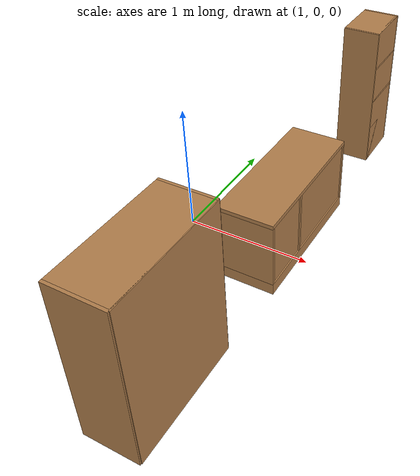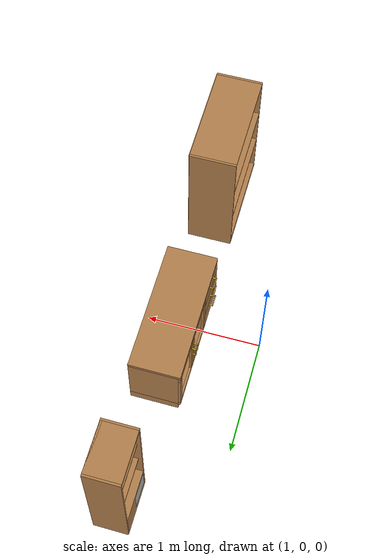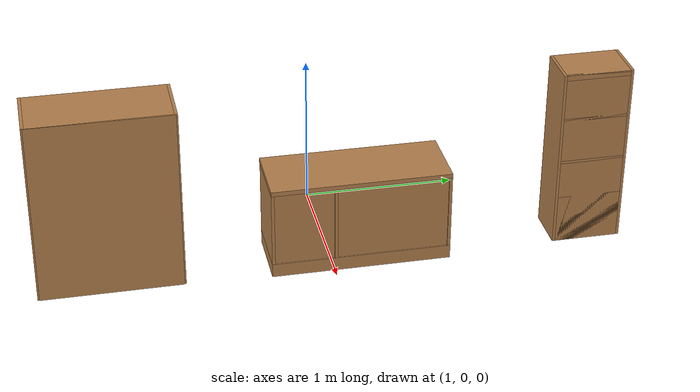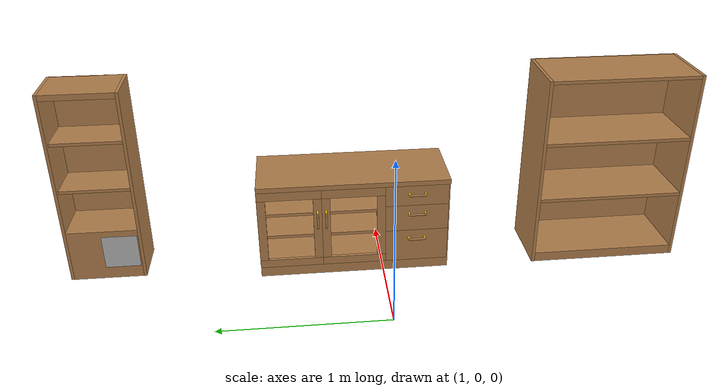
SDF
<sdf version="1.6">
 <world name="default">
  <model name="bookshelf">
   <static>1</static>
   <link name="link">
    <inertial><mass>1</mass></inertial>
    <collision name="back">
     <pose>0 0.005 0.6 0 -0 0</pose>
     <geometry><box><size>0.9 0.01 1.2</size></box></geometry>
    </collision>
    <visual name="visual1">
     <pose>0 0.005 0.6 0 -0 0</pose>
     <geometry><box><size>0.9 0.01 1.2</size></box></geometry>
     <material>
      <script><uri>file://media/materials/scripts/gazebo.material</uri><name>Gazebo/Wood</name></script>
     </material>
    </visual>
    <collision name="left_side">
     <pose>0.45 -0.195 0.6 0 -0 0</pose>
     <geometry><box><size>0.02 0.4 1.2</size></box></geometry>
    </collision>
    <visual name="visual2">
     <pose>0.45 -0.195 0.6 0 -0 0</pose>
     <geometry><box><size>0.02 0.4 1.2</size></box></geometry>
     <material>
      <script><uri>file://media/materials/scripts/gazebo.material</uri><name>Gazebo/Wood</name></script>
     </material>
    </visual>
    <collision name="right_side">
     <pose>-0.45 -0.195 0.6 0 -0 0</pose>
     <geometry><box><size>0.02 0.4 1.2</size></box></geometry>
    </collision>
    <visual name="visual3">
     <pose>-0.45 -0.195 0.6 0 -0 0</pose>
     <geometry><box><size>0.02 0.4 1.2</size></box></geometry>
     <material>
      <script><uri>file://media/materials/scripts/gazebo.material</uri><name>Gazebo/Wood</name></script>
     </material>
    </visual>
    <collision name="bottom">
     <pose>0 -0.195 0.03 0 -0 0</pose>
     <geometry><box><size>0.88 0.4 0.06</size></box></geometry>
    </collision>
    <visual name="visual4">
     <pose>0 -0.195 0.03 0 -0 0</pose>
     <geometry><box><size>0.88 0.4 0.06</size></box></geometry>
     <material>
      <script><uri>file://media/materials/scripts/gazebo.material</uri><name>Gazebo/Wood</name></script>
     </material>
    </visual>
    <collision name="top">
     <pose>0 -0.195 1.19 0 -0 0</pose>
     <geometry><box><size>0.88 0.4 0.02</size></box></geometry>
    </collision>
    <visual name="visual5">
     <pose>0 -0.195 1.19 0 -0 0</pose>
     <geometry><box><size>0.88 0.4 0.02</size></box></geometry>
     <material>
      <script><uri>file://media/materials/scripts/gazebo.material</uri><name>Gazebo/Wood</name></script>
     </material>
    </visual>
    <collision name="low_shelf">
     <pose>0 -0.195 0.43 0 -0 0</pose>
     <geometry><box><size>0.88 0.4 0.02</size></box></geometry>
    </collision>
    <visual name="visual6">
     <pose>0 -0.195 0.43 0 -0 0</pose>
     <geometry><box><size>0.88 0.4 0.02</size></box></geometry>
     <material>
      <script><uri>file://media/materials/scripts/gazebo.material</uri><name>Gazebo/Wood</name></script>
     </material>
    </visual>
    <collision name="high_shelf">
     <pose>0 -0.195 0.8 0 -0 0</pose>
     <geometry><box><size>0.88 0.4 0.02</size></box></geometry>
    </collision>
    <visual name="visual7">
     <pose>0 -0.195 0.8 0 -0 0</pose>
     <geometry><box><size>0.88 0.4 0.02</size></box></geometry>
     <material>
      <script><uri>file://media/materials/scripts/gazebo.material</uri><name>Gazebo/Wood</name></script>
     </material>
    </visual>
   </link>
   <pose>1.9 -1.4 0 0 0 -1.57</pose>
  </model>
  <model name="hcr_shelf_1">
   <link name="link">
    <inertial>
     <mass>5</mass>
     <inertia><ixx>1</ixx><ixy>0</ixy><ixz>0</ixz><iyy>1</iyy><iyz>0</iyz><izz>1</izz></inertia>
    </inertial>
    <visual name="left_board">
     <pose>-0.1475 0.009 -0.598 0 -0 0</pose>
     <geometry><box><size>0.295 0.018 1.196</size></box></geometry>
     <material>
      <script><uri>model://base_materials/wood/scripts/wood.material</uri><name>base_materials/wood</name></script>
     </material>
    </visual>
    <collision name="collision_left_board">
     <pose>-0.1475 0.009 -0.598 0 -0 0</pose>
     <geometry><box><size>0.295 0.018 1.196</size></box></geometry>
    </collision>
    <visual name="right_board">
     <pose>-0.1475 0.441 -0.598 0 -0 0</pose>
     <geometry><box><size>0.295 0.018 1.196</size></box></geometry>
     <material>
      <script><uri>model://base_materials/wood/scripts/wood.material</uri><name>base_materials/wood</name></script>
     </material>
    </visual>
    <collision name="collision_right_board">
     <pose>-0.1475 0.441 -0.598 0 -0 0</pose>
     <geometry><box><size>0.295 0.018 1.196</size></box></geometry>
    </collision>
    <visual name="top_board">
     <pose>-0.1475 0.225 -0.0175 0 -0 0</pose>
     <geometry><box><size>0.295 0.414 0.035</size></box></geometry>
     <material>
      <script><uri>model://base_materials/wood/scripts/wood.material</uri><name>base_materials/wood</name></script>
     </material>
    </visual>
    <collision name="collision_top_board">
     <pose>-0.1475 0.225 -0.0175 0 -0 0</pose>
     <geometry><box><size>0.295 0.414 0.035</size></box></geometry>
    </collision>
    <visual name="1st_shelf">
     <pose>-0.162 0.225 -0.311 0 -0 0</pose>
     <geometry><box><size>0.266 0.414 0.018</size></box></geometry>
     <material>
      <script><uri>model://base_materials/wood/scripts/wood.material</uri><name>base_materials/wood</name></script>
     </material>
    </visual>
    <collision name="collision_1st_shelf">
     <pose>-0.162 0.225 -0.311 0 -0 0</pose>
     <geometry><box><size>0.266 0.414 0.018</size></box></geometry>
    </collision>
    <visual name="2nd_shelf">
     <pose>-0.162 0.225 -0.613 0 -0 0</pose>
     <geometry><box><size>0.266 0.414 0.018</size></box></geometry>
     <material>
      <script><uri>model://base_materials/wood/scripts/wood.material</uri><name>base_materials/wood</name></script>
     </material>
    </visual>
    <collision name="collision_2nd_shelf">
     <pose>-0.162 0.225 -0.613 0 -0 0</pose>
     <geometry><box><size>0.266 0.414 0.018</size></box></geometry>
    </collision>
    <visual name="bottom_board">
     <pose>-0.1475 0.225 -1.0335 0 -0 0</pose>
     <geometry><box><size>0.295 0.414 0.325</size></box></geometry>
     <material>
      <script><uri>model://base_materials/wood/scripts/wood.material</uri><name>base_materials/wood</name></script>
     </material>
    </visual>
    <collision name="collision_bottom_board">
     <pose>-0.1475 0.225 -1.0335 0 -0 0</pose>
     <geometry><box><size>0.295 0.414 0.325</size></box></geometry>
    </collision>
    <visual name="back_board">
     <pose>-0.286 0.225 -0.598 0 -0 0</pose>
     <geometry><box><size>0.018 0.414 1.196</size></box></geometry>
     <material>
      <script><uri>model://base_materials/wood/scripts/wood.material</uri><name>base_materials/wood</name></script>
     </material>
    </visual>
    <collision name="collision_back_board">
     <pose>-0.286 0.225 -0.598 0 -0 0</pose>
     <geometry><box><size>0.018 0.414 1.196</size></box></geometry>
    </collision>
    <visual name="marker_0031">
     <pose>0 0.32 -1.015 0 -0 0</pose>
     <geometry><box><size>0.0001 0.21 0.21</size></box></geometry>
     <material>
      <script>
       <uri>model://hcr_shelf_1/marker/0031/scripts</uri>
       <uri>model://hcr_shelf_1/marker/0031/textures</uri>
       <name>Marker/0031</name>
      </script>
     </material>
    </visual>
    <collision name="collision_marker_0031">
     <pose>0 0.32 -1.015 0 -0 0</pose>
     <geometry><box><size>0.0001 0.21 0.21</size></box></geometry>
    </collision>
    <velocity_decay><linear>0</linear><angular>0</angular></velocity_decay>
   </link>
   <static>1</static>
   <pose>1.6 1.9 1.2 0 -0 3.14</pose>
  </model>
  <model name="living_sideboard">
   <link name="link">
    <inertial>
     <mass>10</mass>
     <inertia><ixx>1</ixx><ixy>0</ixy><ixz>0</ixz><iyy>1</iyy><iyz>0</iyz><izz>1</izz></inertia>
    </inertial>
    <visual name="left_board">
     <pose>-0.23 0.01 0.3375 0 -0 0</pose>
     <geometry><box><size>0.42 0.02 0.495</size></box></geometry>
     <material>
      <script><uri>model://base_materials/wood/scripts/wood.material</uri><name>base_materials/wood</name></script>
     </material>
    </visual>
    <collision name="collision_left_board">
     <pose>-0.23 0.01 0.3375 0 -0 0</pose>
     <geometry><box><size>0.42 0.02 0.495</size></box></geometry>
    </collision>
    <visual name="back_board">
     <pose>-0.42 0.575 0.2925 0 -0 0</pose>
     <geometry><box><size>0.02 1.11 0.585</size></box></geometry>
     <material>
      <script><uri>model://base_materials/wood/scripts/wood.material</uri><name>base_materials/wood</name></script>
     </material>
    </visual>
    <collision name="collision_back_board">
     <pose>-0.42 0.575 0.2925 0 -0 0</pose>
     <geometry><box><size>0.02 1.11 0.585</size></box></geometry>
    </collision>
    <visual name="right_board">
     <pose>-0.23 1.14 0.3375 0 -0 0</pose>
     <geometry><box><size>0.42 0.02 0.495</size></box></geometry>
     <material>
      <script><uri>model://base_materials/wood/scripts/wood.material</uri><name>base_materials/wood</name></script>
     </material>
    </visual>
    <collision name="collision_right_board">
     <pose>-0.23 1.14 0.3375 0 -0 0</pose>
     <geometry><box><size>0.42 0.02 0.495</size></box></geometry>
    </collision>
    <visual name="center_vertical_board1">
     <pose>-0.23 0.74 0.3375 0 -0 0</pose>
     <geometry><box><size>0.42 0.02 0.495</size></box></geometry>
     <material>
      <script><uri>model://base_materials/wood/scripts/wood.material</uri><name>base_materials/wood</name></script>
     </material>
    </visual>
    <collision name="collision_center_vertical_board1">
     <pose>-0.23 0.74 0.3375 0 -0 0</pose>
     <geometry><box><size>0.42 0.02 0.495</size></box></geometry>
    </collision>
    <visual name="top_board">
     <pose>-0.22 0.575 0.6 0 -0 0</pose>
     <geometry><box><size>0.44 1.15 0.03</size></box></geometry>
     <material>
      <script><uri>model://base_materials/wood/scripts/wood.material</uri><name>base_materials/wood</name></script>
     </material>
    </visual>
    <collision name="collision_top_board">
     <pose>-0.22 0.575 0.6 0 -0 0</pose>
     <geometry><box><size>0.44 1.15 0.03</size></box></geometry>
    </collision>
    <visual name="bottom_board">
     <pose>-0.23 0.575 0.045 0 -0 0</pose>
     <geometry><box><size>0.42 1.15 0.09</size></box></geometry>
     <material>
      <script><uri>model://base_materials/wood/scripts/wood.material</uri><name>base_materials/wood</name></script>
     </material>
    </visual>
    <collision name="collision_bottom_board">
     <pose>-0.23 0.575 0.045 0 -0 0</pose>
     <geometry><box><size>0.42 1.15 0.09</size></box></geometry>
    </collision>
    <visual name="1st_shelf">
     <pose>-0.225 0.37 0.259 0 -0 0</pose>
     <geometry><box><size>0.36 0.72 0.018</size></box></geometry>
     <material>
      <script><uri>model://base_materials/wood/scripts/wood.material</uri><name>base_materials/wood</name></script>
     </material>
    </visual>
    <collision name="collision_1st_shelf">
     <pose>-0.225 0.37 0.259 0 -0 0</pose>
     <geometry><box><size>0.36 0.72 0.018</size></box></geometry>
    </collision>
    <visual name="2nd_shelf">
     <pose>-0.225 0.37 0.407 0 -0 0</pose>
     <geometry><box><size>0.36 0.72 0.018</size></box></geometry>
     <material>
      <script><uri>model://base_materials/wood/scripts/wood.material</uri><name>base_materials/wood</name></script>
     </material>
    </visual>
    <collision name="collision_2nd_shelf">
     <pose>-0.225 0.37 0.407 0 -0 0</pose>
     <geometry><box><size>0.36 0.72 0.018</size></box></geometry>
    </collision>
    <visual name="1st_drawer">
     <pose>-0.2025 0.95 0.52 0 -0 0</pose>
     <geometry><box><size>0.405 0.38 0.13</size></box></geometry>
     <material>
      <script><uri>model://base_materials/wood/scripts/wood.material</uri><name>base_materials/wood</name></script>
     </material>
    </visual>
    <collision name="collision_1st_drawer">
     <pose>-0.2025 0.95 0.52 0 -0 0</pose>
     <geometry><box><size>0.405 0.38 0.13</size></box></geometry>
    </collision>
    <visual name="1st_drawer_handle_l1">
     <pose>0.015 0.9015 0.535 3.14159 1.57079 3.14159</pose>
     <geometry><cylinder><radius>0.006</radius><length>0.03</length></cylinder></geometry>
     <material>
      <ambient>1 0.84314 0 1</ambient>
      <diffuse>1 0.84314 0 1</diffuse>
      <specular>0.1 0.1 0.1 1</specular>
     </material>
    </visual>
    <collision name="collision_1st_drawer_handle_l1">
     <pose>0.015 0.9015 0.535 3.14159 1.57079 3.14159</pose>
     <geometry><cylinder><radius>0.006</radius><length>0.03</length></cylinder></geometry>
    </collision>
    <visual name="1st_drawer_handle_l2">
     <pose>0.03 0.9015 0.535 0 -0 0</pose>
     <geometry><sphere><radius>0.006</radius></sphere></geometry>
     <material>
      <ambient>1 0.84314 0 1</ambient>
      <diffuse>1 0.84314 0 1</diffuse>
      <specular>0.1 0.1 0.1 1</specular>
     </material>
    </visual>
    <collision name="collision_1st_drawer_handle_l2">
     <pose>0.03 0.9015 0.535 0 -0 0</pose>
     <geometry><sphere><radius>0.006</radius></sphere></geometry>
    </collision>
    <visual name="1st_drawer_handle_r1">
     <pose>0.015 0.9985 0.535 3.14159 1.57079 3.14159</pose>
     <geometry><cylinder><radius>0.006</radius><length>0.03</length></cylinder></geometry>
     <material>
      <ambient>1 0.84314 0 1</ambient>
      <diffuse>1 0.84314 0 1</diffuse>
      <specular>0.1 0.1 0.1 1</specular>
     </material>
    </visual>
    <collision name="collision_1st_drawer_handle_r1">
     <pose>0.015 0.9985 0.535 3.14159 1.57079 3.14159</pose>
     <geometry><cylinder><radius>0.006</radius><length>0.03</length></cylinder></geometry>
    </collision>
    <visual name="1st_drawer_handle_r2">
     <pose>0.03 0.9985 0.535 0 -0 0</pose>
     <geometry><sphere><radius>0.006</radius></sphere></geometry>
     <material>
      <ambient>1 0.84314 0 1</ambient>
      <diffuse>1 0.84314 0 1</diffuse>
      <specular>0.1 0.1 0.1 1</specular>
     </material>
    </visual>
    <collision name="collision_1st_drawer_handle_r2">
     <pose>0.03 0.9985 0.535 0 -0 0</pose>
     <geometry><sphere><radius>0.006</radius></sphere></geometry>
    </collision>
    <visual name="1st_drawer_handle_center">
     <pose>0.03 0.95 0.535 1.5708 -0 0</pose>
     <geometry><cylinder><radius>0.006</radius><length>0.097</length></cylinder></geometry>
     <material>
      <script><uri>model://base_materials/wood/scripts/wood.material</uri><name>base_materials/wood</name></script>
     </material>
    </visual>
    <collision name="collision_1st_drawer_handle_center">
     <pose>0.03 0.95 0.535 1.5708 -0 0</pose>
     <geometry><cylinder><radius>0.006</radius><length>0.097</length></cylinder></geometry>
    </collision>
    <visual name="2nd_drawer">
     <pose>-0.2025 0.95 0.37 0 -0 0</pose>
     <geometry><box><size>0.405 0.38 0.17</size></box></geometry>
     <material>
      <script><uri>model://base_materials/wood/scripts/wood.material</uri><name>base_materials/wood</name></script>
     </material>
    </visual>
    <collision name="collision_2nd_drawer">
     <pose>-0.2025 0.95 0.37 0 -0 0</pose>
     <geometry><box><size>0.405 0.38 0.17</size></box></geometry>
    </collision>
    <visual name="2nd_drawer_handle_l1">
     <pose>0.015 0.9015 0.405 3.14159 1.57079 3.14159</pose>
     <geometry><cylinder><radius>0.006</radius><length>0.03</length></cylinder></geometry>
     <material>
      <ambient>1 0.84314 0 1</ambient>
      <diffuse>1 0.84314 0 1</diffuse>
      <specular>0.1 0.1 0.1 1</specular>
     </material>
    </visual>
    <collision name="collision_2nd_drawer_handle_l1">
     <pose>0.015 0.9015 0.405 3.14159 1.57079 3.14159</pose>
     <geometry><cylinder><radius>0.006</radius><length>0.03</length></cylinder></geometry>
    </collision>
    <visual name="2nd_drawer_handle_l2">
     <pose>0.03 0.9015 0.405 0 -0 0</pose>
     <geometry><sphere><radius>0.006</radius></sphere></geometry>
     <material>
      <ambient>1 0.84314 0 1</ambient>
      <diffuse>1 0.84314 0 1</diffuse>
      <specular>0.1 0.1 0.1 1</specular>
     </material>
    </visual>
    <collision name="collision_2nd_drawer_handle_l2">
     <pose>0.03 0.9015 0.405 0 -0 0</pose>
     <geometry><sphere><radius>0.006</radius></sphere></geometry>
    </collision>
    <visual name="2nd_drawer_handle_r1">
     <pose>0.015 0.9985 0.405 3.14159 1.57079 3.14159</pose>
     <geometry><cylinder><radius>0.006</radius><length>0.03</length></cylinder></geometry>
     <material>
      <ambient>1 0.84314 0 1</ambient>
      <diffuse>1 0.84314 0 1</diffuse>
      <specular>0.1 0.1 0.1 1</specular>
     </material>
    </visual>
    <collision name="collision_2nd_drawer_handle_r1">
     <pose>0.015 0.9985 0.405 3.14159 1.57079 3.14159</pose>
     <geometry><cylinder><radius>0.006</radius><length>0.03</length></cylinder></geometry>
    </collision>
    <visual name="2nd_drawer_handle_r2">
     <pose>0.03 0.9985 0.405 0 -0 0</pose>
     <geometry><sphere><radius>0.006</radius></sphere></geometry>
     <material>
      <ambient>1 0.84314 0 1</ambient>
      <diffuse>1 0.84314 0 1</diffuse>
      <specular>0.1 0.1 0.1 1</specular>
     </material>
    </visual>
    <collision name="collision_2nd_drawer_handle_r2">
     <pose>0.03 0.9985 0.405 0 -0 0</pose>
     <geometry><sphere><radius>0.006</radius></sphere></geometry>
    </collision>
    <visual name="2nd_drawer_handle_center">
     <pose>0.03 0.95 0.405 1.5708 -0 0</pose>
     <geometry><cylinder><radius>0.006</radius><length>0.097</length></cylinder></geometry>
     <material>
      <script><uri>model://base_materials/wood/scripts/wood.material</uri><name>base_materials/wood</name></script>
     </material>
    </visual>
    <collision name="collision_2nd_drawer_handle_center">
     <pose>0.03 0.95 0.405 1.5708 -0 0</pose>
     <geometry><cylinder><radius>0.006</radius><length>0.097</length></cylinder></geometry>
    </collision>
    <visual name="3rd_drawer">
     <pose>-0.2025 0.95 0.18 0 -0 0</pose>
     <geometry><box><size>0.405 0.38 0.21</size></box></geometry>
     <material>
      <script><uri>model://base_materials/wood/scripts/wood.material</uri><name>base_materials/wood</name></script>
     </material>
    </visual>
    <collision name="collision_3rd_drawer">
     <pose>-0.2025 0.95 0.18 0 -0 0</pose>
     <geometry><box><size>0.405 0.38 0.21</size></box></geometry>
    </collision>
    <visual name="3rd_drawer_handle_l1">
     <pose>0.015 0.9015 0.235 3.14159 1.57079 3.14159</pose>
     <geometry><cylinder><radius>0.006</radius><length>0.03</length></cylinder></geometry>
     <material>
      <ambient>1 0.84314 0 1</ambient>
      <diffuse>1 0.84314 0 1</diffuse>
      <specular>0.1 0.1 0.1 1</specular>
     </material>
    </visual>
    <collision name="collision_3rd_drawer_handle_l1">
     <pose>0.015 0.9015 0.235 3.14159 1.57079 3.14159</pose>
     <geometry><cylinder><radius>0.006</radius><length>0.03</length></cylinder></geometry>
    </collision>
    <visual name="3rd_drawer_handle_l2">
     <pose>0.03 0.9015 0.235 0 -0 0</pose>
     <geometry><sphere><radius>0.006</radius></sphere></geometry>
     <material>
      <ambient>1 0.84314 0 1</ambient>
      <diffuse>1 0.84314 0 1</diffuse>
      <specular>0.1 0.1 0.1 1</specular>
     </material>
    </visual>
    <collision name="collision_3rd_drawer_handle_l2">
     <pose>0.03 0.9015 0.235 0 -0 0</pose>
     <geometry><sphere><radius>0.006</radius></sphere></geometry>
    </collision>
    <visual name="3rd_drawer_handle_r1">
     <pose>0.015 0.9985 0.235 3.14159 1.57079 3.14159</pose>
     <geometry><cylinder><radius>0.006</radius><length>0.03</length></cylinder></geometry>
     <material>
      <ambient>1 0.84314 0 1</ambient>
      <diffuse>1 0.84314 0 1</diffuse>
      <specular>0.1 0.1 0.1 1</specular>
     </material>
    </visual>
    <collision name="collision_3rd_drawer_handle_r1">
     <pose>0.015 0.9985 0.235 3.14159 1.57079 3.14159</pose>
     <geometry><cylinder><radius>0.006</radius><length>0.03</length></cylinder></geometry>
    </collision>
    <visual name="3rd_drawer_handle_r2">
     <pose>0.03 0.9985 0.235 0 -0 0</pose>
     <geometry><sphere><radius>0.006</radius></sphere></geometry>
     <material>
      <ambient>1 0.84314 0 1</ambient>
      <diffuse>1 0.84314 0 1</diffuse>
      <specular>0.1 0.1 0.1 1</specular>
     </material>
    </visual>
    <collision name="collision_3rd_drawer_handle_r2">
     <pose>0.03 0.9985 0.235 0 -0 0</pose>
     <geometry><sphere><radius>0.006</radius></sphere></geometry>
    </collision>
    <visual name="3rd_drawer_handle_center">
     <pose>0.03 0.95 0.235 1.5708 -0 0</pose>
     <geometry><cylinder><radius>0.006</radius><length>0.097</length></cylinder></geometry>
     <material>
      <script><uri>model://base_materials/wood/scripts/wood.material</uri><name>base_materials/wood</name></script>
     </material>
    </visual>
    <collision name="collision_3rd_drawer_handle_center">
     <pose>0.03 0.95 0.235 1.5708 -0 0</pose>
     <geometry><cylinder><radius>0.006</radius><length>0.097</length></cylinder></geometry>
    </collision>
    <visual name="left_door_left_frame">
     <pose>-0.01 0.025 0.3275 0 -0 0</pose>
     <geometry><box><size>0.02 0.05 0.405</size></box></geometry>
     <material>
      <script><uri>model://base_materials/wood/scripts/wood.material</uri><name>base_materials/wood</name></script>
     </material>
    </visual>
    <collision name="collision_left_door_left_frame">
     <pose>-0.01 0.025 0.3275 0 -0 0</pose>
     <geometry><box><size>0.02 0.05 0.405</size></box></geometry>
    </collision>
    <visual name="left_door_right_frame">
     <pose>-0.01 0.355 0.3275 0 -0 0</pose>
     <geometry><box><size>0.02 0.05 0.405</size></box></geometry>
     <material>
      <script><uri>model://base_materials/wood/scripts/wood.material</uri><name>base_materials/wood</name></script>
     </material>
    </visual>
    <collision name="collision_left_door_right_frame">
     <pose>-0.01 0.355 0.3275 0 -0 0</pose>
     <geometry><box><size>0.02 0.05 0.405</size></box></geometry>
    </collision>
    <visual name="left_door_handle_top1">
     <pose>0.015 0.355 0.4475 3.14159 1.57079 3.14159</pose>
     <geometry><cylinder><radius>0.006</radius><length>0.03</length></cylinder></geometry>
     <material>
      <ambient>1 0.84314 0 1</ambient>
      <diffuse>1 0.84314 0 1</diffuse>
      <specular>0.1 0.1 0.1 1</specular>
     </material>
    </visual>
    <collision name="collision_left_door_handle_top1">
     <pose>0.015 0.355 0.4475 3.14159 1.57079 3.14159</pose>
     <geometry><cylinder><radius>0.006</radius><length>0.03</length></cylinder></geometry>
    </collision>
    <visual name="left_door_handle_top2">
     <pose>0.03 0.355 0.4475 0 -0 0</pose>
     <geometry><sphere><radius>0.006</radius></sphere></geometry>
     <material>
      <ambient>1 0.84314 0 1</ambient>
      <diffuse>1 0.84314 0 1</diffuse>
      <specular>0.1 0.1 0.1 1</specular>
     </material>
    </visual>
    <collision name="collision_left_door_handle_top2">
     <pose>0.03 0.355 0.4475 0 -0 0</pose>
     <geometry><sphere><radius>0.006</radius></sphere></geometry>
    </collision>
    <visual name="left_door_handle_bottom1">
     <pose>0.015 0.355 0.3505 3.14159 1.57079 3.14159</pose>
     <geometry><cylinder><radius>0.006</radius><length>0.03</length></cylinder></geometry>
     <material>
      <ambient>1 0.84314 0 1</ambient>
      <diffuse>1 0.84314 0 1</diffuse>
      <specular>0.1 0.1 0.1 1</specular>
     </material>
    </visual>
    <collision name="collision_left_door_handle_bottom1">
     <pose>0.015 0.355 0.3505 3.14159 1.57079 3.14159</pose>
     <geometry><cylinder><radius>0.006</radius><length>0.03</length></cylinder></geometry>
    </collision>
    <visual name="left_door_handle_bottom2">
     <pose>0.03 0.355 0.3505 0 -0 0</pose>
     <geometry><sphere><radius>0.006</radius></sphere></geometry>
     <material>
      <ambient>1 0.84314 0 1</ambient>
      <diffuse>1 0.84314 0 1</diffuse>
      <specular>0.1 0.1 0.1 1</specular>
     </material>
    </visual>
    <collision name="collision_left_door_handle_bottom2">
     <pose>0.03 0.355 0.3505 0 -0 0</pose>
     <geometry><sphere><radius>0.006</radius></sphere></geometry>
    </collision>
    <visual name="left_door_handle_center">
     <pose>0.03 0.355 0.399 0 -0 0</pose>
     <geometry><cylinder><radius>0.006</radius><length>0.097</length></cylinder></geometry>
     <material>
      <script><uri>model://base_materials/wood/scripts/wood.material</uri><name>base_materials/wood</name></script>
     </material>
    </visual>
    <collision name="collision_left_door_handle_center">
     <pose>0.03 0.355 0.399 0 -0 0</pose>
     <geometry><cylinder><radius>0.006</radius><length>0.097</length></cylinder></geometry>
    </collision>
    <visual name="left_door_top_frame">
     <pose>-0.01 0.19 0.5575 0 -0 0</pose>
     <geometry><box><size>0.02 0.38 0.055</size></box></geometry>
     <material>
      <script><uri>model://base_materials/wood/scripts/wood.material</uri><name>base_materials/wood</name></script>
     </material>
    </visual>
    <collision name="collision_left_door_top_frame">
     <pose>-0.01 0.19 0.5575 0 -0 0</pose>
     <geometry><box><size>0.02 0.38 0.055</size></box></geometry>
    </collision>
    <visual name="left_door_bottom_frame">
     <pose>-0.01 0.19 0.1 0 -0 0</pose>
     <geometry><box><size>0.02 0.38 0.05</size></box></geometry>
     <material>
      <script><uri>model://base_materials/wood/scripts/wood.material</uri><name>base_materials/wood</name></script>
     </material>
    </visual>
    <collision name="collision_left_door_bottom_frame">
     <pose>-0.01 0.19 0.1 0 -0 0</pose>
     <geometry><box><size>0.02 0.38 0.05</size></box></geometry>
    </collision>
    <visual name="right_door_left_frame">
     <pose>-0.01 0.405 0.3275 0 -0 0</pose>
     <geometry><box><size>0.02 0.05 0.405</size></box></geometry>
     <material>
      <script><uri>model://base_materials/wood/scripts/wood.material</uri><name>base_materials/wood</name></script>
     </material>
    </visual>
    <collision name="collision_right_door_left_frame">
     <pose>-0.01 0.405 0.3275 0 -0 0</pose>
     <geometry><box><size>0.02 0.05 0.405</size></box></geometry>
    </collision>
    <visual name="right_door_right_frame">
     <pose>-0.01 0.735 0.3275 0 -0 0</pose>
     <geometry><box><size>0.02 0.05 0.405</size></box></geometry>
     <material>
      <script><uri>model://base_materials/wood/scripts/wood.material</uri><name>base_materials/wood</name></script>
     </material>
    </visual>
    <collision name="collision_right_door_right_frame">
     <pose>-0.01 0.735 0.3275 0 -0 0</pose>
     <geometry><box><size>0.02 0.05 0.405</size></box></geometry>
    </collision>
    <visual name="right_door_top_frame">
     <pose>-0.01 0.57 0.5575 0 -0 0</pose>
     <geometry><box><size>0.02 0.38 0.055</size></box></geometry>
     <material>
      <script><uri>model://base_materials/wood/scripts/wood.material</uri><name>base_materials/wood</name></script>
     </material>
    </visual>
    <collision name="collision_right_door_top_frame">
     <pose>-0.01 0.57 0.5575 0 -0 0</pose>
     <geometry><box><size>0.02 0.38 0.055</size></box></geometry>
    </collision>
    <visual name="right_door_bottom_frame">
     <pose>-0.01 0.57 0.1 0 -0 0</pose>
     <geometry><box><size>0.02 0.38 0.05</size></box></geometry>
     <material>
      <script><uri>model://base_materials/wood/scripts/wood.material</uri><name>base_materials/wood</name></script>
     </material>
    </visual>
    <collision name="collision_right_door_bottom_frame">
     <pose>-0.01 0.57 0.1 0 -0 0</pose>
     <geometry><box><size>0.02 0.38 0.05</size></box></geometry>
    </collision>
    <visual name="right_door_handle_top1">
     <pose>0.015 0.405 0.4475 3.14159 1.57079 3.14159</pose>
     <geometry><cylinder><radius>0.006</radius><length>0.03</length></cylinder></geometry>
     <material>
      <ambient>1 0.84314 0 1</ambient>
      <diffuse>1 0.84314 0 1</diffuse>
      <specular>0.1 0.1 0.1 1</specular>
     </material>
    </visual>
    <collision name="collision_right_door_handle_top1">
     <pose>0.015 0.405 0.4475 3.14159 1.57079 3.14159</pose>
     <geometry><cylinder><radius>0.006</radius><length>0.03</length></cylinder></geometry>
    </collision>
    <visual name="right_door_handle_top2">
     <pose>0.03 0.405 0.4475 0 -0 0</pose>
     <geometry><sphere><radius>0.006</radius></sphere></geometry>
     <material>
      <ambient>1 0.84314 0 1</ambient>
      <diffuse>1 0.84314 0 1</diffuse>
      <specular>0.1 0.1 0.1 1</specular>
     </material>
    </visual>
    <collision name="collision_right_door_handle_top2">
     <pose>0.03 0.405 0.4475 0 -0 0</pose>
     <geometry><sphere><radius>0.006</radius></sphere></geometry>
    </collision>
    <visual name="right_door_handle_bottom1">
     <pose>0.015 0.405 0.3505 3.14159 1.57079 3.14159</pose>
     <geometry><cylinder><radius>0.006</radius><length>0.03</length></cylinder></geometry>
     <material>
      <ambient>1 0.84314 0 1</ambient>
      <diffuse>1 0.84314 0 1</diffuse>
      <specular>0.1 0.1 0.1 1</specular>
     </material>
    </visual>
    <collision name="collision_right_door_handle_bottom1">
     <pose>0.015 0.405 0.3505 3.14159 1.57079 3.14159</pose>
     <geometry><cylinder><radius>0.006</radius><length>0.03</length></cylinder></geometry>
    </collision>
    <visual name="right_door_handle_bottom2">
     <pose>0.03 0.405 0.3505 0 -0 0</pose>
     <geometry><sphere><radius>0.006</radius></sphere></geometry>
     <material>
      <ambient>1 0.84314 0 1</ambient>
      <diffuse>1 0.84314 0 1</diffuse>
      <specular>0.1 0.1 0.1 1</specular>
     </material>
    </visual>
    <collision name="collision_right_door_handle_bottom2">
     <pose>0.03 0.405 0.3505 0 -0 0</pose>
     <geometry><sphere><radius>0.006</radius></sphere></geometry>
    </collision>
    <visual name="right_door_handle_center">
     <pose>0.03 0.405 0.399 0 -0 0</pose>
     <geometry><cylinder><radius>0.006</radius><length>0.097</length></cylinder></geometry>
     <material>
      <script><uri>model://base_materials/wood/scripts/wood.material</uri><name>base_materials/wood</name></script>
     </material>
    </visual>
    <collision name="collision_right_door_handle_center">
     <pose>0.03 0.4 0.399 0 -0 0</pose>
     <geometry><cylinder><radius>0.006</radius><length>0.097</length></cylinder></geometry>
    </collision>
    <velocity_decay><linear>0</linear><angular>0</angular></velocity_decay>
   </link>
   <static>1</static>
   <pose>1.5 0.75 0 0 -0 3.14</pose>
  </model>
 </world>
</sdf>
